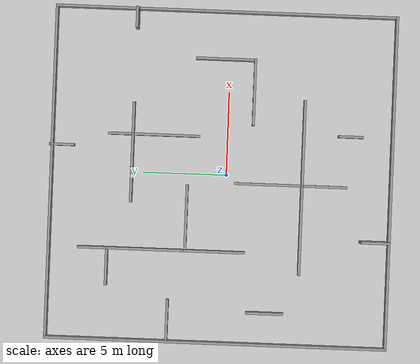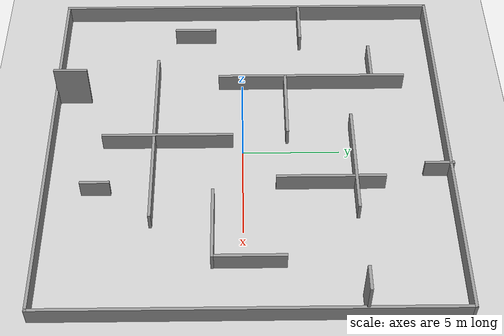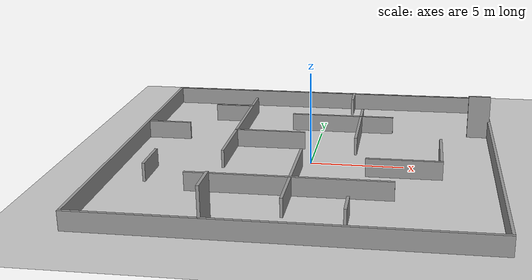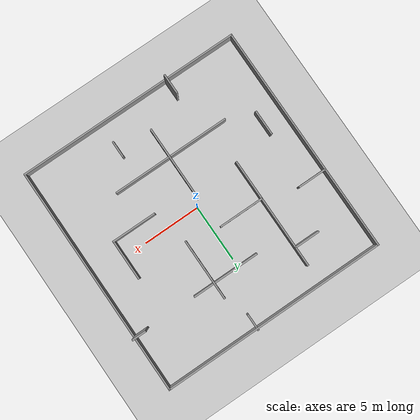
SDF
<sdf version="1.7">
 <world name="default">
  <light name="sun" type="directional">
   <pose>0 0 10 0 -0 0</pose>
   <diffuse>0.8 0.8 0.8 1</diffuse>
   <specular>0.2 0.2 0.2 1</specular>
   <attenuation>
    <range>1000</range>
    <constant>0.9</constant>
    <linear>0.01</linear>
    <quadratic>0.001</quadratic>
   </attenuation>
   <direction>-0.5 0.1 -0.9</direction>
   <spot><inner_angle>0</inner_angle><outer_angle>0</outer_angle><falloff>0</falloff></spot>
  </light>
  <model name="ground_plane">
   <static>1</static>
   <link name="link">
    <collision name="collision">
     <geometry><plane><normal>0 0 1</normal><size>100 100</size></plane></geometry>
     <surface><friction><ode><mu>100</mu><mu2>50</mu2></ode></friction></surface>
    </collision>
    <visual name="visual">
     <cast_shadows>0</cast_shadows>
     <geometry><plane><normal>0 0 1</normal><size>100 100</size></plane></geometry>
     <material>
      <script><uri>file://media/materials/scripts/gazebo.material</uri><name>Gazebo/Grey</name></script>
     </material>
    </visual>
   </link>
  </model>
  <gravity>0 0 -9.8</gravity>
  <magnetic_field>6e-06 2.3e-05 -4.2e-05</magnetic_field>
  <atmosphere type="adiabatic"/>
  <physics type="ode">
   <max_step_size>0.001</max_step_size>
   <real_time_factor>1</real_time_factor>
   <real_time_update_rate>1000</real_time_update_rate>
  </physics>
  <scene><ambient>0.4 0.4 0.4 1</ambient><background>0.7 0.7 0.7 1</background><shadows>1</shadows></scene>
  <spherical_coordinates>
   <surface_model>EARTH_WGS84</surface_model>
   <latitude_deg>0</latitude_deg>
   <longitude_deg>0</longitude_deg>
   <elevation>0</elevation>
   <heading_deg>0</heading_deg>
  </spherical_coordinates>
  <model name="easyworld">
   <pose>-0.135 0.352499 0 0 -0 0</pose>
   <link name="Wall_0">
    <collision name="Wall_0_Collision">
     <geometry><box><size>20.5 0.15 1</size></box></geometry>
     <pose>0 0 0.5 0 -0 0</pose>
    </collision>
    <visual name="Wall_0_Visual">
     <pose>0 0 0.5 0 -0 0</pose>
     <geometry><box><size>20.5 0.15 1</size></box></geometry>
     <material>
      <script><uri>file://media/materials/scripts/gazebo.material</uri><name>Gazebo/Grey</name></script>
      <ambient>1 1 1 1</ambient>
     </material>
     <meta><layer>0</layer></meta>
    </visual>
    <pose>-9.925 -0.051499 0 0 -0 1.5708</pose>
   </link>
   <link name="Wall_11">
    <collision name="Wall_11_Collision">
     <geometry><box><size>2.5 0.15 1</size></box></geometry>
     <pose>0 0 0.5 0 -0 0</pose>
    </collision>
    <visual name="Wall_11_Visual">
     <pose>0 0 0.5 0 -0 0</pose>
     <geometry><box><size>2.5 0.15 1</size></box></geometry>
     <material>
      <script><uri>file://media/materials/scripts/gazebo.material</uri><name>Gazebo/Grey</name></script>
      <ambient>1 1 1 1</ambient>
     </material>
     <meta><layer>0</layer></meta>
    </visual>
    <pose>-8.643 2.8895 0 0 -0 0</pose>
   </link>
   <link name="Wall_13">
    <collision name="Wall_13_Collision">
     <geometry><box><size>4 0.15 1</size></box></geometry>
     <pose>0 0 0.5 0 -0 0</pose>
    </collision>
    <visual name="Wall_13_Visual">
     <pose>0 0 0.5 0 -0 0</pose>
     <geometry><box><size>4 0.15 1</size></box></geometry>
     <material>
      <script><uri>file://media/materials/scripts/gazebo.material</uri><name>Gazebo/Grey</name></script>
      <ambient>1 1 1 1</ambient>
     </material>
     <meta><layer>0</layer></meta>
    </visual>
    <pose>-2.502 1.9605 0 0 -0 0</pose>
   </link>
   <link name="Wall_15">
    <collision name="Wall_15_Collision">
     <geometry><box><size>6 0.15 1</size></box></geometry>
     <pose>0 0 0.5 0 -0 0</pose>
    </collision>
    <visual name="Wall_15_Visual">
     <pose>0 0 0.5 0 -0 0</pose>
     <geometry><box><size>6 0.15 1</size></box></geometry>
     <material>
      <script><uri>file://media/materials/scripts/gazebo.material</uri><name>Gazebo/Grey</name></script>
      <ambient>1 1 1 1</ambient>
     </material>
     <meta><layer>0</layer></meta>
    </visual>
    <pose>1.319 5.3155 0 0 -0 0</pose>
   </link>
   <link name="Wall_17">
    <collision name="Wall_17_Collision">
     <geometry><box><size>5.5 0.15 1</size></box></geometry>
     <pose>0 0 0.5 0 -0 0</pose>
    </collision>
    <visual name="Wall_17_Visual">
     <pose>0 0 0.5 0 -0 0</pose>
     <geometry><box><size>5.5 0.15 1</size></box></geometry>
     <material>
      <script><uri>file://media/materials/scripts/gazebo.material</uri><name>Gazebo/Grey</name></script>
      <ambient>1 1 1 1</ambient>
     </material>
     <meta><layer>0</layer></meta>
    </visual>
    <pose>2.413 4.04717 0 0 -0 -1.5708</pose>
   </link>
   <link name="Wall_2">
    <collision name="Wall_2_Collision">
     <geometry><box><size>20 0.15 1</size></box></geometry>
     <pose>0 0 0.5 0 -0 0</pose>
    </collision>
    <visual name="Wall_2_Visual">
     <pose>0 0 0.5 0 -0 0</pose>
     <geometry><box><size>20 0.15 1</size></box></geometry>
     <material>
      <script><uri>file://media/materials/scripts/gazebo.material</uri><name>Gazebo/Grey</name></script>
      <ambient>1 1 1 1</ambient>
     </material>
     <meta><layer>0</layer></meta>
    </visual>
    <pose>0 -10.2265 0 0 -0 0</pose>
   </link>
   <link name="Wall_20">
    <collision name="Wall_20_Collision">
     <geometry><box><size>1.5 0.15 1</size></box></geometry>
     <pose>0 0 0.5 0 -0 0</pose>
    </collision>
    <visual name="Wall_20_Visual">
     <pose>0 0 0.5 0 -0 0</pose>
     <geometry><box><size>1.5 0.15 1</size></box></geometry>
     <material>
      <script><uri>file://media/materials/scripts/gazebo.material</uri><name>Gazebo/Grey</name></script>
      <ambient>1 1 1 1</ambient>
     </material>
     <meta><layer>0</layer></meta>
    </visual>
    <pose>1.627 9.5515 0 0 -0 -1.5708</pose>
   </link>
   <link name="Wall_22">
    <collision name="Wall_22_Collision">
     <geometry><box><size>10.5 0.15 1</size></box></geometry>
     <pose>0 0 0.5 0 -0 0</pose>
    </collision>
    <visual name="Wall_22_Visual">
     <pose>0 0 0.5 0 -0 0</pose>
     <geometry><box><size>10.5 0.15 1</size></box></geometry>
     <material>
      <script><uri>file://media/materials/scripts/gazebo.material</uri><name>Gazebo/Grey</name></script>
      <ambient>1 1 1 1</ambient>
     </material>
     <meta><layer>0</layer></meta>
    </visual>
    <pose>-0.44 -4.9085 0 0 -0 0</pose>
   </link>
   <link name="Wall_24">
    <collision name="Wall_24_Collision">
     <geometry><box><size>6.75 0.15 1</size></box></geometry>
     <pose>0 0 0.5 0 -0 0</pose>
    </collision>
    <visual name="Wall_24_Visual">
     <pose>0 0 0.5 0 -0 0</pose>
     <geometry><box><size>6.75 0.15 1</size></box></geometry>
     <material>
      <script><uri>file://media/materials/scripts/gazebo.material</uri><name>Gazebo/Grey</name></script>
      <ambient>1 1 1 1</ambient>
     </material>
     <meta><layer>0</layer></meta>
    </visual>
    <pose>-0.326 -4.2215 0 0 -0 -1.5708</pose>
   </link>
   <link name="Wall_26">
    <collision name="Wall_26_Collision">
     <geometry><box><size>3.5 0.15 1</size></box></geometry>
     <pose>0 0 0.5 0 -0 0</pose>
    </collision>
    <visual name="Wall_26_Visual">
     <pose>0 0 0.5 0 -0 0</pose>
     <geometry><box><size>3.5 0.15 1</size></box></geometry>
     <material>
      <script><uri>file://media/materials/scripts/gazebo.material</uri><name>Gazebo/Grey</name></script>
      <ambient>1 1 1 1</ambient>
     </material>
     <meta><layer>0</layer></meta>
    </visual>
    <pose>7.09 -0.030499 0 0 -0 -1.5708</pose>
   </link>
   <link name="Wall_28">
    <collision name="Wall_28_Collision">
     <geometry><box><size>1.75 0.15 2.5</size></box></geometry>
     <pose>0 0 1.25 0 -0 0</pose>
    </collision>
    <visual name="Wall_28_Visual">
     <pose>0 0 1.25 0 -0 0</pose>
     <geometry><box><size>1.75 0.15 2.5</size></box></geometry>
     <material>
      <script><uri>file://media/materials/scripts/gazebo.material</uri><name>Gazebo/Grey</name></script>
      <ambient>1 1 1 1</ambient>
     </material>
     <meta><layer>0</layer></meta>
    </visual>
    <pose>-3.53338 -9.33344 0 0 -0 -1.5708</pose>
   </link>
   <link name="Wall_3">
    <collision name="Wall_3_Collision">
     <geometry><box><size>20.5 0.15 1</size></box></geometry>
     <pose>0 0 0.5 0 -0 0</pose>
    </collision>
    <visual name="Wall_3_Visual">
     <pose>0 0 0.5 0 -0 0</pose>
     <geometry><box><size>20.5 0.15 1</size></box></geometry>
     <material>
      <script><uri>file://media/materials/scripts/gazebo.material</uri><name>Gazebo/Grey</name></script>
      <ambient>1 1 1 1</ambient>
     </material>
     <meta><layer>0</layer></meta>
    </visual>
    <pose>9.925 -0.051499 0 0 -0 1.5708</pose>
   </link>
   <link name="Wall_30">
    <collision name="Wall_30_Collision">
     <geometry><box><size>4 0.15 1</size></box></geometry>
     <pose>0 0 0.5 0 -0 0</pose>
    </collision>
    <visual name="Wall_30_Visual">
     <pose>0 0 0.5 0 -0 0</pose>
     <geometry><box><size>4 0.15 1</size></box></geometry>
     <material>
      <script><uri>file://media/materials/scripts/gazebo.material</uri><name>Gazebo/Grey</name></script>
      <ambient>1 1 1 1</ambient>
     </material>
     <meta><layer>0</layer></meta>
    </visual>
    <pose>5.171 -1.8515 0 0 -0 0</pose>
   </link>
   <link name="Wall_32">
    <collision name="Wall_32_Collision">
     <geometry><box><size>1.5 0.15 1</size></box></geometry>
     <pose>0 0 0.5 0 -0 0</pose>
    </collision>
    <visual name="Wall_32_Visual">
     <pose>0 0 0.5 0 -0 0</pose>
     <geometry><box><size>1.5 0.15 1</size></box></geometry>
     <material>
      <script><uri>file://media/materials/scripts/gazebo.material</uri><name>Gazebo/Grey</name></script>
      <ambient>1 1 1 1</ambient>
     </material>
     <meta><layer>0</layer></meta>
    </visual>
    <pose>2.718 -7.7195 0 0 -0 -1.5708</pose>
   </link>
   <link name="Wall_34">
    <collision name="Wall_34_Collision">
     <geometry><box><size>1.25 0.15 2.5</size></box></geometry>
     <pose>0 0 1.25 0 -0 0</pose>
    </collision>
    <visual name="Wall_34_Visual">
     <pose>0 0 1.25 0 -0 0</pose>
     <geometry><box><size>1.25 0.15 2.5</size></box></geometry>
     <material>
      <script><uri>file://media/materials/scripts/gazebo.material</uri><name>Gazebo/Grey</name></script>
      <ambient>1 1 1 1</ambient>
     </material>
     <meta><layer>0</layer></meta>
    </visual>
    <pose>9.3156 5.26083 0 0 -0 0</pose>
   </link>
   <link name="Wall_36">
    <collision name="Wall_36_Collision">
     <geometry><box><size>2.25 0.15 1</size></box></geometry>
     <pose>0 0 0.5 0 -0 0</pose>
    </collision>
    <visual name="Wall_36_Visual">
     <pose>0 0 0.5 0 -0 0</pose>
     <geometry><box><size>2.25 0.15 1</size></box></geometry>
     <material>
      <script><uri>file://media/materials/scripts/gazebo.material</uri><name>Gazebo/Grey</name></script>
      <ambient>1 1 1 1</ambient>
     </material>
     <meta><layer>0</layer></meta>
    </visual>
    <pose>-8.035 -2.9295 0 0 -0 -1.5708</pose>
   </link>
   <link name="Wall_4">
    <collision name="Wall_4_Collision">
     <geometry><box><size>20 0.15 1</size></box></geometry>
     <pose>0 0 0.5 0 -0 0</pose>
    </collision>
    <visual name="Wall_4_Visual">
     <pose>0 0 0.5 0 -0 0</pose>
     <geometry><box><size>20 0.15 1</size></box></geometry>
     <material>
      <script><uri>file://media/materials/scripts/gazebo.material</uri><name>Gazebo/Grey</name></script>
      <ambient>1 1 1 1</ambient>
     </material>
     <meta><layer>0</layer></meta>
    </visual>
    <pose>0 10.1235 0 0 -0 3.14159</pose>
   </link>
   <link name="Wall_6">
    <collision name="Wall_6_Collision">
     <geometry><box><size>10 0.15 1</size></box></geometry>
     <pose>0 0 0.5 0 -0 0</pose>
    </collision>
    <visual name="Wall_6_Visual">
     <pose>0 0 0.5 0 -0 0</pose>
     <geometry><box><size>10 0.15 1</size></box></geometry>
     <material>
      <script><uri>file://media/materials/scripts/gazebo.material</uri><name>Gazebo/Grey</name></script>
      <ambient>1 1 1 1</ambient>
     </material>
     <meta><layer>0</layer></meta>
    </visual>
    <pose>-4.457 3.38225 0 0 -0 -1.5708</pose>
   </link>
   <link name="Wall_9">
    <collision name="Wall_9_Collision">
     <geometry><box><size>2.25 0.15 1</size></box></geometry>
     <pose>0 0 0.5 0 -0 0</pose>
    </collision>
    <visual name="Wall_9_Visual">
     <pose>0 0 0.5 0 -0 0</pose>
     <geometry><box><size>2.25 0.15 1</size></box></geometry>
     <material>
      <script><uri>file://media/materials/scripts/gazebo.material</uri><name>Gazebo/Grey</name></script>
      <ambient>1 1 1 1</ambient>
     </material>
     <meta><layer>0</layer></meta>
    </visual>
    <pose>-5.559 6.6325 0 0 -0 0</pose>
   </link>
   <static>1</static>
  </model>
 </world>
</sdf>
